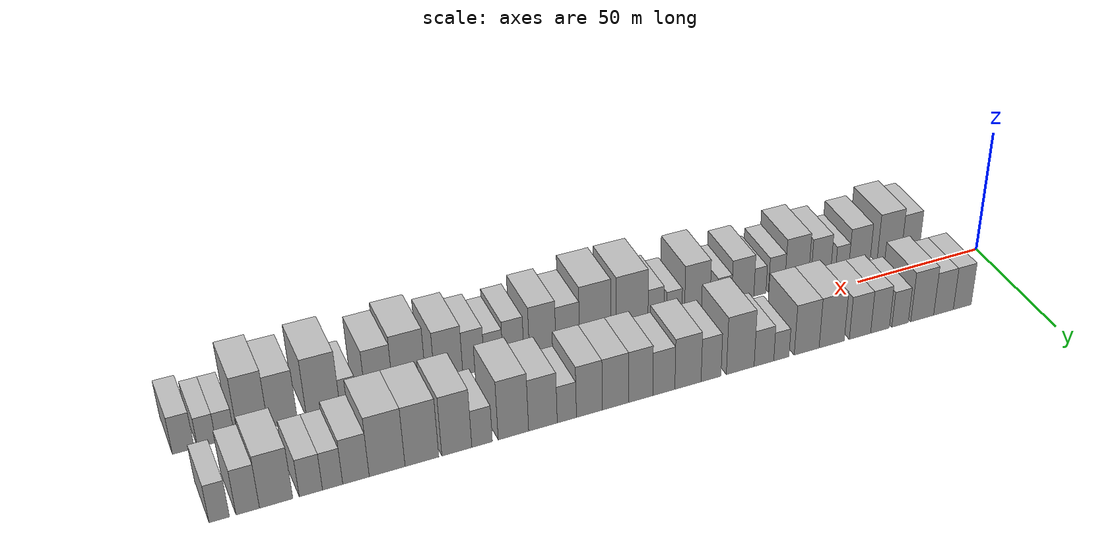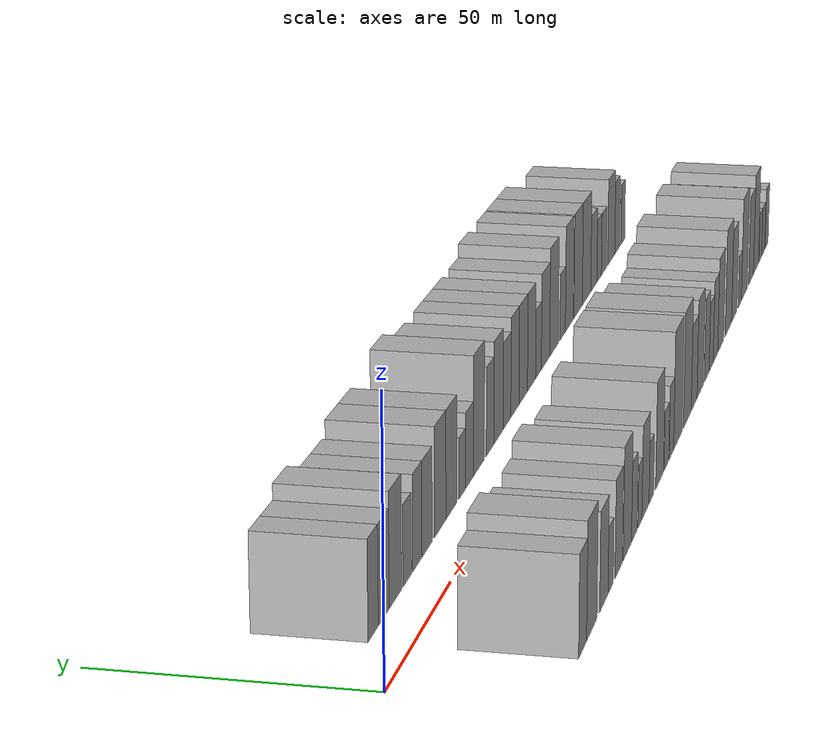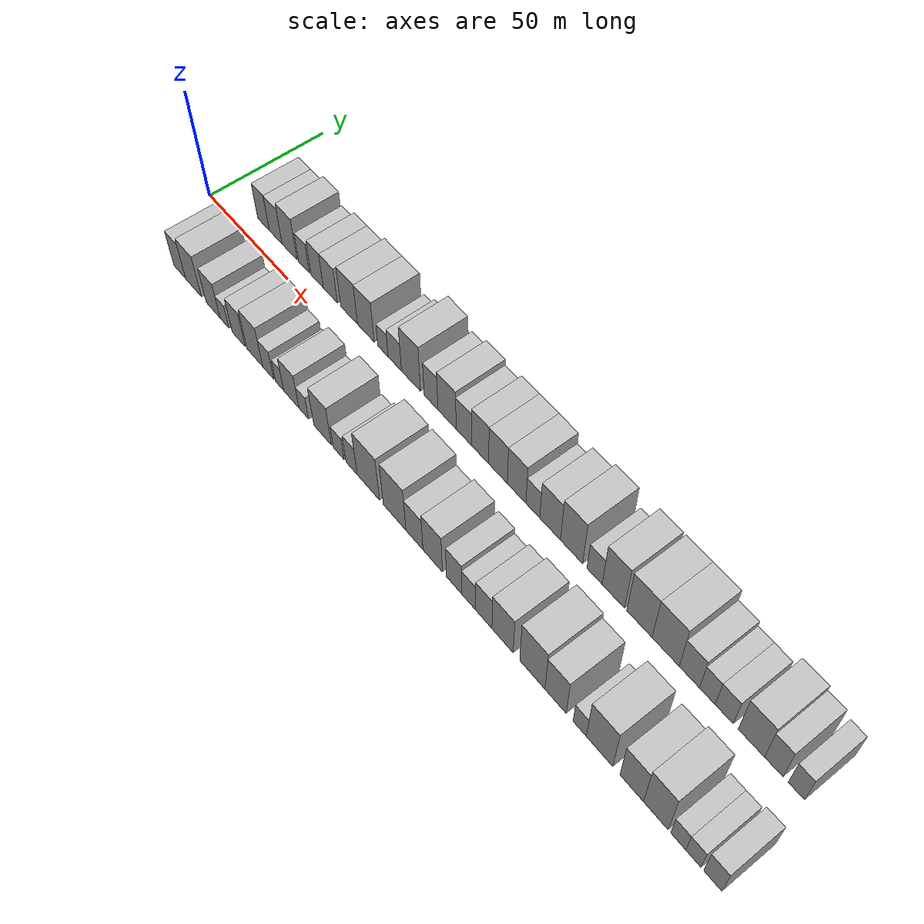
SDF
<sdf version="1.6">
 <world name="default">
  <scene>
   <sky><clouds><speed>12</speed></clouds></sky>
   <ambient>0.4 0.4 0.4 1</ambient>
   <background>0.7 0.7 0.7 1</background>
   <shadows>1</shadows>
  </scene>
  <gravity>0 0 -9.8066</gravity>
  <magnetic_field>6e-06 2.3e-05 -4.2e-05</magnetic_field>
  <physics default="0" name="default_physics" type="ode">
   <ode>
    <solver>
     <type>quick</type>
     <iters>10</iters>
     <sor>1.0</sor>
     <use_dynamic_moi_rescaling>0</use_dynamic_moi_rescaling>
    </solver>
    <constraints>
     <cfm>0</cfm>
     <erp>0.2</erp>
     <contact_max_correcting_vel>100</contact_max_correcting_vel>
     <contact_surface_layer>0.001</contact_surface_layer>
    </constraints>
   </ode>
   <max_step_size>0.004</max_step_size>
   <real_time_factor>1</real_time_factor>
   <real_time_update_rate>250</real_time_update_rate>
  </physics>
  <light name="sun" type="directional">
   <pose>0 0 10 0 0 0</pose>
   <diffuse>0.8 0.8 0.8 1</diffuse>
   <specular>0.2 0.2 0.2 1</specular>
   <attenuation>
    <range>1000</range>
    <constant>0.9</constant>
    <linear>0.01</linear>
    <quadratic>0.001</quadratic>
   </attenuation>
   <direction>-0.5 0.1 -0.9</direction>
  </light>
  <model name="building_1">
   <static>1</static>
   <pose>23.6788 17.5000 0 0.000000 0.000000 1.570796</pose>
   <link name="link">
    <pose>0 0 9.00 0 0 0</pose>
    <collision name="collision"><geometry><box><size>20.0000 7.3577 18.0000</size></box></geometry></collision>
    <visual name="visual">
     <cast_shadows>0</cast_shadows>
     <geometry><box><size>20.0000 7.3577 18.0000</size></box></geometry>
     <material>
      <script>
       <uri>model://HANNAS_wall/materials/scripts</uri>
       <uri>model://HANNAS_wall/materials/textures</uri>
       <name>vrc/HANNAS_wall</name>
      </script>
     </material>
    </visual>
   </link>
  </model>
  <model name="building_2">
   <static>1</static>
   <pose>31.3678 17.5000 0 0.000000 0.000000 1.570796</pose>
   <link name="link">
    <pose>0 0 9.00 0 0 0</pose>
    <collision name="collision"><geometry><box><size>20.0000 8.0202 18.0000</size></box></geometry></collision>
    <visual name="visual">
     <cast_shadows>0</cast_shadows>
     <geometry><box><size>20.0000 8.0202 18.0000</size></box></geometry>
     <material>
      <script>
       <uri>model://HANNAS_wall/materials/scripts</uri>
       <uri>model://HANNAS_wall/materials/textures</uri>
       <name>vrc/HANNAS_wall</name>
      </script>
     </material>
    </visual>
   </link>
  </model>
  <model name="building_3">
   <static>1</static>
   <pose>39.9978 17.5000 0 0.000000 0.000000 1.570796</pose>
   <link name="link">
    <pose>0 0 10.50 0 0 0</pose>
    <collision name="collision"><geometry><box><size>20.0000 9.2400 21.0000</size></box></geometry></collision>
    <visual name="visual">
     <cast_shadows>0</cast_shadows>
     <geometry><box><size>20.0000 9.2400 21.0000</size></box></geometry>
     <material>
      <script>
       <uri>model://HANNAS_wall/materials/scripts</uri>
       <uri>model://HANNAS_wall/materials/textures</uri>
       <name>vrc/HANNAS_wall</name>
      </script>
     </material>
    </visual>
   </link>
  </model>
  <model name="building_4">
   <static>1</static>
   <pose>48.9161 17.5000 0 0.000000 0.000000 1.570796</pose>
   <link name="link">
    <pose>0 0 7.50 0 0 0</pose>
    <collision name="collision"><geometry><box><size>20.0000 6.5967 15.0000</size></box></geometry></collision>
    <visual name="visual">
     <cast_shadows>0</cast_shadows>
     <geometry><box><size>20.0000 6.5967 15.0000</size></box></geometry>
     <material>
      <script>
       <uri>model://HANNAS_wall/materials/scripts</uri>
       <uri>model://HANNAS_wall/materials/textures</uri>
       <name>vrc/HANNAS_wall</name>
      </script>
     </material>
    </visual>
   </link>
  </model>
  <model name="building_5">
   <static>1</static>
   <pose>56.9347 17.5000 0 0.000000 0.000000 1.570796</pose>
   <link name="link">
    <pose>0 0 9.00 0 0 0</pose>
    <collision name="collision"><geometry><box><size>20.0000 7.4404 18.0000</size></box></geometry></collision>
    <visual name="visual">
     <cast_shadows>0</cast_shadows>
     <geometry><box><size>20.0000 7.4404 18.0000</size></box></geometry>
     <material>
      <script>
       <uri>model://HANNAS_wall/materials/scripts</uri>
       <uri>model://HANNAS_wall/materials/textures</uri>
       <name>vrc/HANNAS_wall</name>
      </script>
     </material>
    </visual>
   </link>
  </model>
  <model name="building_6">
   <static>1</static>
   <pose>64.8460 17.5000 0 0.000000 0.000000 1.570796</pose>
   <link name="link">
    <pose>0 0 9.00 0 0 0</pose>
    <collision name="collision"><geometry><box><size>20.0000 8.3821 18.0000</size></box></geometry></collision>
    <visual name="visual">
     <cast_shadows>0</cast_shadows>
     <geometry><box><size>20.0000 8.3821 18.0000</size></box></geometry>
     <material>
      <script>
       <uri>model://HANNAS_wall/materials/scripts</uri>
       <uri>model://HANNAS_wall/materials/textures</uri>
       <name>vrc/HANNAS_wall</name>
      </script>
     </material>
    </visual>
   </link>
  </model>
  <model name="building_7">
   <static>1</static>
   <pose>75.9265 17.5000 0 0.000000 0.000000 1.570796</pose>
   <link name="link">
    <pose>0 0 10.50 0 0 0</pose>
    <collision name="collision"><geometry><box><size>20.0000 9.7789 21.0000</size></box></geometry></collision>
    <visual name="visual">
     <cast_shadows>0</cast_shadows>
     <geometry><box><size>20.0000 9.7789 21.0000</size></box></geometry>
     <material>
      <script>
       <uri>model://HANNAS_wall/materials/scripts</uri>
       <uri>model://HANNAS_wall/materials/textures</uri>
       <name>vrc/HANNAS_wall</name>
      </script>
     </material>
    </visual>
   </link>
  </model>
  <model name="building_8">
   <static>1</static>
   <pose>85.6075 17.5000 0 0.000000 0.000000 1.570796</pose>
   <link name="link">
    <pose>0 0 10.50 0 0 0</pose>
    <collision name="collision"><geometry><box><size>20.0000 9.5833 21.0000</size></box></geometry></collision>
    <visual name="visual">
     <cast_shadows>0</cast_shadows>
     <geometry><box><size>20.0000 9.5833 21.0000</size></box></geometry>
     <material>
      <script>
       <uri>model://HANNAS_wall/materials/scripts</uri>
       <uri>model://HANNAS_wall/materials/textures</uri>
       <name>vrc/HANNAS_wall</name>
      </script>
     </material>
    </visual>
   </link>
  </model>
  <model name="building_9">
   <static>1</static>
   <pose>95.3073 17.5000 0 0.000000 0.000000 1.570796</pose>
   <link name="link">
    <pose>0 0 6.00 0 0 0</pose>
    <collision name="collision"><geometry><box><size>20.0000 5.8162 12.0000</size></box></geometry></collision>
    <visual name="visual">
     <cast_shadows>0</cast_shadows>
     <geometry><box><size>20.0000 5.8162 12.0000</size></box></geometry>
     <material>
      <script>
       <uri>model://HANNAS_wall/materials/scripts</uri>
       <uri>model://HANNAS_wall/materials/textures</uri>
       <name>vrc/HANNAS_wall</name>
      </script>
     </material>
    </visual>
   </link>
  </model>
  <model name="building_10">
   <static>1</static>
   <pose>101.9310 17.5000 0 0.000000 0.000000 1.570796</pose>
   <link name="link">
    <pose>0 0 7.50 0 0 0</pose>
    <collision name="collision"><geometry><box><size>20.0000 7.4312 15.0000</size></box></geometry></collision>
    <visual name="visual">
     <cast_shadows>0</cast_shadows>
     <geometry><box><size>20.0000 7.4312 15.0000</size></box></geometry>
     <material>
      <script>
       <uri>model://HANNAS_wall/materials/scripts</uri>
       <uri>model://HANNAS_wall/materials/textures</uri>
       <name>vrc/HANNAS_wall</name>
      </script>
     </material>
    </visual>
   </link>
  </model>
  <model name="building_11">
   <static>1</static>
   <pose>110.8485 17.5000 0 0.000000 0.000000 1.570796</pose>
   <link name="link">
    <pose>0 0 12.00 0 0 0</pose>
    <collision name="collision"><geometry><box><size>20.0000 10.4037 24.0000</size></box></geometry></collision>
    <visual name="visual">
     <cast_shadows>0</cast_shadows>
     <geometry><box><size>20.0000 10.4037 24.0000</size></box></geometry>
     <material>
      <script>
       <uri>model://HANNAS_wall/materials/scripts</uri>
       <uri>model://HANNAS_wall/materials/textures</uri>
       <name>vrc/HANNAS_wall</name>
      </script>
     </material>
    </visual>
   </link>
  </model>
  <model name="building_12">
   <static>1</static>
   <pose>121.7255 17.5000 0 0.000000 0.000000 1.570796</pose>
   <link name="link">
    <pose>0 0 9.00 0 0 0</pose>
    <collision name="collision"><geometry><box><size>20.0000 7.3503 18.0000</size></box></geometry></collision>
    <visual name="visual">
     <cast_shadows>0</cast_shadows>
     <geometry><box><size>20.0000 7.3503 18.0000</size></box></geometry>
     <material>
      <script>
       <uri>model://HANNAS_wall/materials/scripts</uri>
       <uri>model://HANNAS_wall/materials/textures</uri>
       <name>vrc/HANNAS_wall</name>
      </script>
     </material>
    </visual>
   </link>
  </model>
  <model name="building_13">
   <static>1</static>
   <pose>130.2155 17.5000 0 0.000000 0.000000 1.570796</pose>
   <link name="link">
    <pose>0 0 10.50 0 0 0</pose>
    <collision name="collision"><geometry><box><size>20.0000 9.6298 21.0000</size></box></geometry></collision>
    <visual name="visual">
     <cast_shadows>0</cast_shadows>
     <geometry><box><size>20.0000 9.6298 21.0000</size></box></geometry>
     <material>
      <script>
       <uri>model://HANNAS_wall/materials/scripts</uri>
       <uri>model://HANNAS_wall/materials/textures</uri>
       <name>vrc/HANNAS_wall</name>
      </script>
     </material>
    </visual>
   </link>
  </model>
  <model name="building_14">
   <static>1</static>
   <pose>139.0281 17.5000 0 0.000000 0.000000 1.570796</pose>
   <link name="link">
    <pose>0 0 9.00 0 0 0</pose>
    <collision name="collision"><geometry><box><size>20.0000 7.9952 18.0000</size></box></geometry></collision>
    <visual name="visual">
     <cast_shadows>0</cast_shadows>
     <geometry><box><size>20.0000 7.9952 18.0000</size></box></geometry>
     <material>
      <script>
       <uri>model://HANNAS_wall/materials/scripts</uri>
       <uri>model://HANNAS_wall/materials/textures</uri>
       <name>vrc/HANNAS_wall</name>
      </script>
     </material>
    </visual>
   </link>
  </model>
  <model name="building_15">
   <static>1</static>
   <pose>147.3601 17.5000 0 0.000000 0.000000 1.570796</pose>
   <link name="link">
    <pose>0 0 10.50 0 0 0</pose>
    <collision name="collision"><geometry><box><size>20.0000 8.6688 21.0000</size></box></geometry></collision>
    <visual name="visual">
     <cast_shadows>0</cast_shadows>
     <geometry><box><size>20.0000 8.6688 21.0000</size></box></geometry>
     <material>
      <script>
       <uri>model://HANNAS_wall/materials/scripts</uri>
       <uri>model://HANNAS_wall/materials/textures</uri>
       <name>vrc/HANNAS_wall</name>
      </script>
     </material>
    </visual>
   </link>
  </model>
  <model name="building_16">
   <static>1</static>
   <pose>156.3783 17.5000 0 0.000000 0.000000 1.570796</pose>
   <link name="link">
    <pose>0 0 10.50 0 0 0</pose>
    <collision name="collision"><geometry><box><size>20.0000 9.3675 21.0000</size></box></geometry></collision>
    <visual name="visual">
     <cast_shadows>0</cast_shadows>
     <geometry><box><size>20.0000 9.3675 21.0000</size></box></geometry>
     <material>
      <script>
       <uri>model://HANNAS_wall/materials/scripts</uri>
       <uri>model://HANNAS_wall/materials/textures</uri>
       <name>vrc/HANNAS_wall</name>
      </script>
     </material>
    </visual>
   </link>
  </model>
  <model name="building_17">
   <static>1</static>
   <pose>165.6403 17.5000 0 0.000000 0.000000 1.570796</pose>
   <link name="link">
    <pose>0 0 10.50 0 0 0</pose>
    <collision name="collision"><geometry><box><size>20.0000 9.1563 21.0000</size></box></geometry></collision>
    <visual name="visual">
     <cast_shadows>0</cast_shadows>
     <geometry><box><size>20.0000 9.1563 21.0000</size></box></geometry>
     <material>
      <script>
       <uri>model://HANNAS_wall/materials/scripts</uri>
       <uri>model://HANNAS_wall/materials/textures</uri>
       <name>vrc/HANNAS_wall</name>
      </script>
     </material>
    </visual>
   </link>
  </model>
  <model name="building_18">
   <static>1</static>
   <pose>173.5672 17.5000 0 0.000000 0.000000 1.570796</pose>
   <link name="link">
    <pose>0 0 7.50 0 0 0</pose>
    <collision name="collision"><geometry><box><size>20.0000 6.6975 15.0000</size></box></geometry></collision>
    <visual name="visual">
     <cast_shadows>0</cast_shadows>
     <geometry><box><size>20.0000 6.6975 15.0000</size></box></geometry>
     <material>
      <script>
       <uri>model://HANNAS_wall/materials/scripts</uri>
       <uri>model://HANNAS_wall/materials/textures</uri>
       <name>vrc/HANNAS_wall</name>
      </script>
     </material>
    </visual>
   </link>
  </model>
  <model name="building_19">
   <static>1</static>
   <pose>181.8697 17.5000 0 0.000000 0.000000 1.570796</pose>
   <link name="link">
    <pose>0 0 10.50 0 0 0</pose>
    <collision name="collision"><geometry><box><size>20.0000 9.9075 21.0000</size></box></geometry></collision>
    <visual name="visual">
     <cast_shadows>0</cast_shadows>
     <geometry><box><size>20.0000 9.9075 21.0000</size></box></geometry>
     <material>
      <script>
       <uri>model://HANNAS_wall/materials/scripts</uri>
       <uri>model://HANNAS_wall/materials/textures</uri>
       <name>vrc/HANNAS_wall</name>
      </script>
     </material>
    </visual>
   </link>
  </model>
  <model name="building_20">
   <static>1</static>
   <pose>192.0261 17.5000 0 0.000000 0.000000 1.570796</pose>
   <link name="link">
    <pose>0 0 12.00 0 0 0</pose>
    <collision name="collision"><geometry><box><size>20.0000 10.4054 24.0000</size></box></geometry></collision>
    <visual name="visual">
     <cast_shadows>0</cast_shadows>
     <geometry><box><size>20.0000 10.4054 24.0000</size></box></geometry>
     <material>
      <script>
       <uri>model://HANNAS_wall/materials/scripts</uri>
       <uri>model://HANNAS_wall/materials/textures</uri>
       <name>vrc/HANNAS_wall</name>
      </script>
     </material>
    </visual>
   </link>
  </model>
  <model name="building_21">
   <static>1</static>
   <pose>202.6918 17.5000 0 0.000000 0.000000 1.570796</pose>
   <link name="link">
    <pose>0 0 7.50 0 0 0</pose>
    <collision name="collision"><geometry><box><size>20.0000 6.9259 15.0000</size></box></geometry></collision>
    <visual name="visual">
     <cast_shadows>0</cast_shadows>
     <geometry><box><size>20.0000 6.9259 15.0000</size></box></geometry>
     <material>
      <script>
       <uri>model://HANNAS_wall/materials/scripts</uri>
       <uri>model://HANNAS_wall/materials/textures</uri>
       <name>vrc/HANNAS_wall</name>
      </script>
     </material>
    </visual>
   </link>
  </model>
  <model name="building_22">
   <static>1</static>
   <pose>211.1775 17.5000 0 0.000000 0.000000 1.570796</pose>
   <link name="link">
    <pose>0 0 12.00 0 0 0</pose>
    <collision name="collision"><geometry><box><size>20.0000 10.0453 24.0000</size></box></geometry></collision>
    <visual name="visual">
     <cast_shadows>0</cast_shadows>
     <geometry><box><size>20.0000 10.0453 24.0000</size></box></geometry>
     <material>
      <script>
       <uri>model://HANNAS_wall/materials/scripts</uri>
       <uri>model://HANNAS_wall/materials/textures</uri>
       <name>vrc/HANNAS_wall</name>
      </script>
     </material>
    </visual>
   </link>
  </model>
  <model name="building_23">
   <static>1</static>
   <pose>222.7701 17.5000 0 0.000000 0.000000 1.570796</pose>
   <link name="link">
    <pose>0 0 12.00 0 0 0</pose>
    <collision name="collision"><geometry><box><size>20.0000 11.1399 24.0000</size></box></geometry></collision>
    <visual name="visual">
     <cast_shadows>0</cast_shadows>
     <geometry><box><size>20.0000 11.1399 24.0000</size></box></geometry>
     <material>
      <script>
       <uri>model://HANNAS_wall/materials/scripts</uri>
       <uri>model://HANNAS_wall/materials/textures</uri>
       <name>vrc/HANNAS_wall</name>
      </script>
     </material>
    </visual>
   </link>
  </model>
  <model name="building_24">
   <static>1</static>
   <pose>234.1753 17.5000 0 0.000000 0.000000 1.570796</pose>
   <link name="link">
    <pose>0 0 12.00 0 0 0</pose>
    <collision name="collision"><geometry><box><size>20.0000 11.6705 24.0000</size></box></geometry></collision>
    <visual name="visual">
     <cast_shadows>0</cast_shadows>
     <geometry><box><size>20.0000 11.6705 24.0000</size></box></geometry>
     <material>
      <script>
       <uri>model://HANNAS_wall/materials/scripts</uri>
       <uri>model://HANNAS_wall/materials/textures</uri>
       <name>vrc/HANNAS_wall</name>
      </script>
     </material>
    </visual>
   </link>
  </model>
  <model name="building_25">
   <static>1</static>
   <pose>244.2708 17.5000 0 0.000000 0.000000 1.570796</pose>
   <link name="link">
    <pose>0 0 9.00 0 0 0</pose>
    <collision name="collision"><geometry><box><size>20.0000 8.5207 18.0000</size></box></geometry></collision>
    <visual name="visual">
     <cast_shadows>0</cast_shadows>
     <geometry><box><size>20.0000 8.5207 18.0000</size></box></geometry>
     <material>
      <script>
       <uri>model://HANNAS_wall/materials/scripts</uri>
       <uri>model://HANNAS_wall/materials/textures</uri>
       <name>vrc/HANNAS_wall</name>
      </script>
     </material>
    </visual>
   </link>
  </model>
  <model name="building_26">
   <static>1</static>
   <pose>251.7614 17.5000 0 0.000000 0.000000 1.570796</pose>
   <link name="link">
    <pose>0 0 7.50 0 0 0</pose>
    <collision name="collision"><geometry><box><size>20.0000 6.4604 15.0000</size></box></geometry></collision>
    <visual name="visual">
     <cast_shadows>0</cast_shadows>
     <geometry><box><size>20.0000 6.4604 15.0000</size></box></geometry>
     <material>
      <script>
       <uri>model://HANNAS_wall/materials/scripts</uri>
       <uri>model://HANNAS_wall/materials/textures</uri>
       <name>vrc/HANNAS_wall</name>
      </script>
     </material>
    </visual>
   </link>
  </model>
  <model name="building_27">
   <static>1</static>
   <pose>258.6778 17.5000 0 0.000000 0.000000 1.570796</pose>
   <link name="link">
    <pose>0 0 7.50 0 0 0</pose>
    <collision name="collision"><geometry><box><size>20.0000 7.3725 15.0000</size></box></geometry></collision>
    <visual name="visual">
     <cast_shadows>0</cast_shadows>
     <geometry><box><size>20.0000 7.3725 15.0000</size></box></geometry>
     <material>
      <script>
       <uri>model://HANNAS_wall/materials/scripts</uri>
       <uri>model://HANNAS_wall/materials/textures</uri>
       <name>vrc/HANNAS_wall</name>
      </script>
     </material>
    </visual>
   </link>
  </model>
  <model name="building_28">
   <static>1</static>
   <pose>269.5760 17.5000 0 0.000000 0.000000 1.570796</pose>
   <link name="link">
    <pose>0 0 10.50 0 0 0</pose>
    <collision name="collision"><geometry><box><size>20.0000 10.4240 21.0000</size></box></geometry></collision>
    <visual name="visual">
     <cast_shadows>0</cast_shadows>
     <geometry><box><size>20.0000 10.4240 21.0000</size></box></geometry>
     <material>
      <script>
       <uri>model://HANNAS_wall/materials/scripts</uri>
       <uri>model://HANNAS_wall/materials/textures</uri>
       <name>vrc/HANNAS_wall</name>
      </script>
     </material>
    </visual>
   </link>
  </model>
  <model name="building_29">
   <static>1</static>
   <pose>278.4209 17.5000 0 0.000000 0.000000 1.570796</pose>
   <link name="link">
    <pose>0 0 9.00 0 0 0</pose>
    <collision name="collision"><geometry><box><size>20.0000 7.2658 18.0000</size></box></geometry></collision>
    <visual name="visual">
     <cast_shadows>0</cast_shadows>
     <geometry><box><size>20.0000 7.2658 18.0000</size></box></geometry>
     <material>
      <script>
       <uri>model://HANNAS_wall/materials/scripts</uri>
       <uri>model://HANNAS_wall/materials/textures</uri>
       <name>vrc/HANNAS_wall</name>
      </script>
     </material>
    </visual>
   </link>
  </model>
  <model name="building_30">
   <static>1</static>
   <pose>287.1902 17.5000 0 0.000000 0.000000 1.570796</pose>
   <link name="link">
    <pose>0 0 7.50 0 0 0</pose>
    <collision name="collision"><geometry><box><size>20.0000 6.2728 15.0000</size></box></geometry></collision>
    <visual name="visual">
     <cast_shadows>0</cast_shadows>
     <geometry><box><size>20.0000 6.2728 15.0000</size></box></geometry>
     <material>
      <script>
       <uri>model://HANNAS_wall/materials/scripts</uri>
       <uri>model://HANNAS_wall/materials/textures</uri>
       <name>vrc/HANNAS_wall</name>
      </script>
     </material>
    </visual>
   </link>
  </model>
  <model name="building_31">
   <static>1</static>
   <pose>23.8289 -17.5000 0 0.000000 0.000000 1.570796</pose>
   <link name="link">
    <pose>0 0 9.00 0 0 0</pose>
    <collision name="collision"><geometry><box><size>20.0000 7.6578 18.0000</size></box></geometry></collision>
    <visual name="visual">
     <cast_shadows>0</cast_shadows>
     <geometry><box><size>20.0000 7.6578 18.0000</size></box></geometry>
     <material>
      <script>
       <uri>model://HANNAS_wall/materials/scripts</uri>
       <uri>model://HANNAS_wall/materials/textures</uri>
       <name>vrc/HANNAS_wall</name>
      </script>
     </material>
    </visual>
   </link>
  </model>
  <model name="building_32">
   <static>1</static>
   <pose>32.7414 -17.5000 0 0.000000 0.000000 1.570796</pose>
   <link name="link">
    <pose>0 0 10.50 0 0 0</pose>
    <collision name="collision"><geometry><box><size>20.0000 10.1671 21.0000</size></box></geometry></collision>
    <visual name="visual">
     <cast_shadows>0</cast_shadows>
     <geometry><box><size>20.0000 10.1671 21.0000</size></box></geometry>
     <material>
      <script>
       <uri>model://HANNAS_wall/materials/scripts</uri>
       <uri>model://HANNAS_wall/materials/textures</uri>
       <name>vrc/HANNAS_wall</name>
      </script>
     </material>
    </visual>
   </link>
  </model>
  <model name="building_33">
   <static>1</static>
   <pose>45.2137 -17.5000 0 0.000000 0.000000 1.570796</pose>
   <link name="link">
    <pose>0 0 9.00 0 0 0</pose>
    <collision name="collision"><geometry><box><size>20.0000 8.7775 18.0000</size></box></geometry></collision>
    <visual name="visual">
     <cast_shadows>0</cast_shadows>
     <geometry><box><size>20.0000 8.7775 18.0000</size></box></geometry>
     <material>
      <script>
       <uri>model://HANNAS_wall/materials/scripts</uri>
       <uri>model://HANNAS_wall/materials/textures</uri>
       <name>vrc/HANNAS_wall</name>
      </script>
     </material>
    </visual>
   </link>
  </model>
  <model name="building_34">
   <static>1</static>
   <pose>52.3261 -17.5000 0 0.000000 0.000000 1.570796</pose>
   <link name="link">
    <pose>0 0 6.00 0 0 0</pose>
    <collision name="collision"><geometry><box><size>20.0000 5.4472 12.0000</size></box></geometry></collision>
    <visual name="visual">
     <cast_shadows>0</cast_shadows>
     <geometry><box><size>20.0000 5.4472 12.0000</size></box></geometry>
     <material>
      <script>
       <uri>model://HANNAS_wall/materials/scripts</uri>
       <uri>model://HANNAS_wall/materials/textures</uri>
       <name>vrc/HANNAS_wall</name>
      </script>
     </material>
    </visual>
   </link>
  </model>
  <model name="building_35">
   <static>1</static>
   <pose>61.0647 -17.5000 0 0.000000 0.000000 1.570796</pose>
   <link name="link">
    <pose>0 0 9.00 0 0 0</pose>
    <collision name="collision"><geometry><box><size>20.0000 8.0300 18.0000</size></box></geometry></collision>
    <visual name="visual">
     <cast_shadows>0</cast_shadows>
     <geometry><box><size>20.0000 8.0300 18.0000</size></box></geometry>
     <material>
      <script>
       <uri>model://HANNAS_wall/materials/scripts</uri>
       <uri>model://HANNAS_wall/materials/textures</uri>
       <name>vrc/HANNAS_wall</name>
      </script>
     </material>
    </visual>
   </link>
  </model>
  <model name="building_36">
   <static>1</static>
   <pose>70.8630 -17.5000 0 0.000000 0.000000 1.570796</pose>
   <link name="link">
    <pose>0 0 10.50 0 0 0</pose>
    <collision name="collision"><geometry><box><size>20.0000 9.5667 21.0000</size></box></geometry></collision>
    <visual name="visual">
     <cast_shadows>0</cast_shadows>
     <geometry><box><size>20.0000 9.5667 21.0000</size></box></geometry>
     <material>
      <script>
       <uri>model://HANNAS_wall/materials/scripts</uri>
       <uri>model://HANNAS_wall/materials/textures</uri>
       <name>vrc/HANNAS_wall</name>
      </script>
     </material>
    </visual>
   </link>
  </model>
  <model name="building_37">
   <static>1</static>
   <pose>78.8868 -17.5000 0 0.000000 0.000000 1.570796</pose>
   <link name="link">
    <pose>0 0 7.50 0 0 0</pose>
    <collision name="collision"><geometry><box><size>20.0000 6.4808 15.0000</size></box></geometry></collision>
    <visual name="visual">
     <cast_shadows>0</cast_shadows>
     <geometry><box><size>20.0000 6.4808 15.0000</size></box></geometry>
     <material>
      <script>
       <uri>model://HANNAS_wall/materials/scripts</uri>
       <uri>model://HANNAS_wall/materials/textures</uri>
       <name>vrc/HANNAS_wall</name>
      </script>
     </material>
    </visual>
   </link>
  </model>
  <model name="building_38">
   <static>1</static>
   <pose>85.5345 -17.5000 0 0.000000 0.000000 1.570796</pose>
   <link name="link">
    <pose>0 0 6.00 0 0 0</pose>
    <collision name="collision"><geometry><box><size>20.0000 4.8148 12.0000</size></box></geometry></collision>
    <visual name="visual">
     <cast_shadows>0</cast_shadows>
     <geometry><box><size>20.0000 4.8148 12.0000</size></box></geometry>
     <material>
      <script>
       <uri>model://HANNAS_wall/materials/scripts</uri>
       <uri>model://HANNAS_wall/materials/textures</uri>
       <name>vrc/HANNAS_wall</name>
      </script>
     </material>
    </visual>
   </link>
  </model>
  <model name="building_39">
   <static>1</static>
   <pose>92.3503 -17.5000 0 0.000000 0.000000 1.570796</pose>
   <link name="link">
    <pose>0 0 9.00 0 0 0</pose>
    <collision name="collision"><geometry><box><size>20.0000 8.8167 18.0000</size></box></geometry></collision>
    <visual name="visual">
     <cast_shadows>0</cast_shadows>
     <geometry><box><size>20.0000 8.8167 18.0000</size></box></geometry>
     <material>
      <script>
       <uri>model://HANNAS_wall/materials/scripts</uri>
       <uri>model://HANNAS_wall/materials/textures</uri>
       <name>vrc/HANNAS_wall</name>
      </script>
     </material>
    </visual>
   </link>
  </model>
  <model name="building_40">
   <static>1</static>
   <pose>99.4966 -17.5000 0 0.000000 0.000000 1.570796</pose>
   <link name="link">
    <pose>0 0 6.00 0 0 0</pose>
    <collision name="collision"><geometry><box><size>20.0000 5.4760 12.0000</size></box></geometry></collision>
    <visual name="visual">
     <cast_shadows>0</cast_shadows>
     <geometry><box><size>20.0000 5.4760 12.0000</size></box></geometry>
     <material>
      <script>
       <uri>model://HANNAS_wall/materials/scripts</uri>
       <uri>model://HANNAS_wall/materials/textures</uri>
       <name>vrc/HANNAS_wall</name>
      </script>
     </material>
    </visual>
   </link>
  </model>
  <model name="building_41">
   <static>1</static>
   <pose>110.1549 -17.5000 0 0.000000 0.000000 1.570796</pose>
   <link name="link">
    <pose>0 0 10.50 0 0 0</pose>
    <collision name="collision"><geometry><box><size>20.0000 9.8406 21.0000</size></box></geometry></collision>
    <visual name="visual">
     <cast_shadows>0</cast_shadows>
     <geometry><box><size>20.0000 9.8406 21.0000</size></box></geometry>
     <material>
      <script>
       <uri>model://HANNAS_wall/materials/scripts</uri>
       <uri>model://HANNAS_wall/materials/textures</uri>
       <name>vrc/HANNAS_wall</name>
      </script>
     </material>
    </visual>
   </link>
  </model>
  <model name="building_42">
   <static>1</static>
   <pose>119.0127 -17.5000 0 0.000000 0.000000 1.570796</pose>
   <link name="link">
    <pose>0 0 6.00 0 0 0</pose>
    <collision name="collision"><geometry><box><size>20.0000 5.8748 12.0000</size></box></geometry></collision>
    <visual name="visual">
     <cast_shadows>0</cast_shadows>
     <geometry><box><size>20.0000 5.8748 12.0000</size></box></geometry>
     <material>
      <script>
       <uri>model://HANNAS_wall/materials/scripts</uri>
       <uri>model://HANNAS_wall/materials/textures</uri>
       <name>vrc/HANNAS_wall</name>
      </script>
     </material>
    </visual>
   </link>
  </model>
  <model name="building_43">
   <static>1</static>
   <pose>126.0045 -17.5000 0 0.000000 0.000000 1.570796</pose>
   <link name="link">
    <pose>0 0 7.50 0 0 0</pose>
    <collision name="collision"><geometry><box><size>20.0000 6.1087 15.0000</size></box></geometry></collision>
    <visual name="visual">
     <cast_shadows>0</cast_shadows>
     <geometry><box><size>20.0000 6.1087 15.0000</size></box></geometry>
     <material>
      <script>
       <uri>model://HANNAS_wall/materials/scripts</uri>
       <uri>model://HANNAS_wall/materials/textures</uri>
       <name>vrc/HANNAS_wall</name>
      </script>
     </material>
    </visual>
   </link>
  </model>
  <model name="building_44">
   <static>1</static>
   <pose>135.0304 -17.5000 0 0.000000 0.000000 1.570796</pose>
   <link name="link">
    <pose>0 0 12.00 0 0 0</pose>
    <collision name="collision"><geometry><box><size>20.0000 11.9431 24.0000</size></box></geometry></collision>
    <visual name="visual">
     <cast_shadows>0</cast_shadows>
     <geometry><box><size>20.0000 11.9431 24.0000</size></box></geometry>
     <material>
      <script>
       <uri>model://HANNAS_wall/materials/scripts</uri>
       <uri>model://HANNAS_wall/materials/textures</uri>
       <name>vrc/HANNAS_wall</name>
      </script>
     </material>
    </visual>
   </link>
  </model>
  <model name="building_45">
   <static>1</static>
   <pose>148.8252 -17.5000 0 0.000000 0.000000 1.570796</pose>
   <link name="link">
    <pose>0 0 12.00 0 0 0</pose>
    <collision name="collision"><geometry><box><size>20.0000 11.6465 24.0000</size></box></geometry></collision>
    <visual name="visual">
     <cast_shadows>0</cast_shadows>
     <geometry><box><size>20.0000 11.6465 24.0000</size></box></geometry>
     <material>
      <script>
       <uri>model://HANNAS_wall/materials/scripts</uri>
       <uri>model://HANNAS_wall/materials/textures</uri>
       <name>vrc/HANNAS_wall</name>
      </script>
     </material>
    </visual>
   </link>
  </model>
  <model name="building_46">
   <static>1</static>
   <pose>158.9990 -17.5000 0 0.000000 0.000000 1.570796</pose>
   <link name="link">
    <pose>0 0 9.00 0 0 0</pose>
    <collision name="collision"><geometry><box><size>20.0000 8.7010 18.0000</size></box></geometry></collision>
    <visual name="visual">
     <cast_shadows>0</cast_shadows>
     <geometry><box><size>20.0000 8.7010 18.0000</size></box></geometry>
     <material>
      <script>
       <uri>model://HANNAS_wall/materials/scripts</uri>
       <uri>model://HANNAS_wall/materials/textures</uri>
       <name>vrc/HANNAS_wall</name>
      </script>
     </material>
    </visual>
   </link>
  </model>
  <model name="building_47">
   <static>1</static>
   <pose>168.1669 -17.5000 0 0.000000 0.000000 1.570796</pose>
   <link name="link">
    <pose>0 0 10.50 0 0 0</pose>
    <collision name="collision"><geometry><box><size>20.0000 9.6349 21.0000</size></box></geometry></collision>
    <visual name="visual">
     <cast_shadows>0</cast_shadows>
     <geometry><box><size>20.0000 9.6349 21.0000</size></box></geometry>
     <material>
      <script>
       <uri>model://HANNAS_wall/materials/scripts</uri>
       <uri>model://HANNAS_wall/materials/textures</uri>
       <name>vrc/HANNAS_wall</name>
      </script>
     </material>
    </visual>
   </link>
  </model>
  <model name="building_48">
   <static>1</static>
   <pose>178.7441 -17.5000 0 0.000000 0.000000 1.570796</pose>
   <link name="link">
    <pose>0 0 9.00 0 0 0</pose>
    <collision name="collision"><geometry><box><size>20.0000 7.5194 18.0000</size></box></geometry></collision>
    <visual name="visual">
     <cast_shadows>0</cast_shadows>
     <geometry><box><size>20.0000 7.5194 18.0000</size></box></geometry>
     <material>
      <script>
       <uri>model://HANNAS_wall/materials/scripts</uri>
       <uri>model://HANNAS_wall/materials/textures</uri>
       <name>vrc/HANNAS_wall</name>
      </script>
     </material>
    </visual>
   </link>
  </model>
  <model name="building_49">
   <static>1</static>
   <pose>185.8427 -17.5000 0 0.000000 0.000000 1.570796</pose>
   <link name="link">
    <pose>0 0 7.50 0 0 0</pose>
    <collision name="collision"><geometry><box><size>20.0000 6.6780 15.0000</size></box></geometry></collision>
    <visual name="visual">
     <cast_shadows>0</cast_shadows>
     <geometry><box><size>20.0000 6.6780 15.0000</size></box></geometry>
     <material>
      <script>
       <uri>model://HANNAS_wall/materials/scripts</uri>
       <uri>model://HANNAS_wall/materials/textures</uri>
       <name>vrc/HANNAS_wall</name>
      </script>
     </material>
    </visual>
   </link>
  </model>
  <model name="building_50">
   <static>1</static>
   <pose>192.9999 -17.5000 0 0.000000 0.000000 1.570796</pose>
   <link name="link">
    <pose>0 0 9.00 0 0 0</pose>
    <collision name="collision"><geometry><box><size>20.0000 7.6363 18.0000</size></box></geometry></collision>
    <visual name="visual">
     <cast_shadows>0</cast_shadows>
     <geometry><box><size>20.0000 7.6363 18.0000</size></box></geometry>
     <material>
      <script>
       <uri>model://HANNAS_wall/materials/scripts</uri>
       <uri>model://HANNAS_wall/materials/textures</uri>
       <name>vrc/HANNAS_wall</name>
      </script>
     </material>
    </visual>
   </link>
  </model>
  <model name="building_51">
   <static>1</static>
   <pose>201.7672 -17.5000 0 0.000000 0.000000 1.570796</pose>
   <link name="link">
    <pose>0 0 10.50 0 0 0</pose>
    <collision name="collision"><geometry><box><size>20.0000 9.8984 21.0000</size></box></geometry></collision>
    <visual name="visual">
     <cast_shadows>0</cast_shadows>
     <geometry><box><size>20.0000 9.8984 21.0000</size></box></geometry>
     <material>
      <script>
       <uri>model://HANNAS_wall/materials/scripts</uri>
       <uri>model://HANNAS_wall/materials/textures</uri>
       <name>vrc/HANNAS_wall</name>
      </script>
     </material>
    </visual>
   </link>
  </model>
  <model name="building_52">
   <static>1</static>
   <pose>215.4058 -17.5000 0 0.000000 0.000000 1.570796</pose>
   <link name="link">
    <pose>0 0 12.00 0 0 0</pose>
    <collision name="collision"><geometry><box><size>20.0000 11.3788 24.0000</size></box></geometry></collision>
    <visual name="visual">
     <cast_shadows>0</cast_shadows>
     <geometry><box><size>20.0000 11.3788 24.0000</size></box></geometry>
     <material>
      <script>
       <uri>model://HANNAS_wall/materials/scripts</uri>
       <uri>model://HANNAS_wall/materials/textures</uri>
       <name>vrc/HANNAS_wall</name>
      </script>
     </material>
    </visual>
   </link>
  </model>
  <model name="building_53">
   <static>1</static>
   <pose>225.8042 -17.5000 0 0.000000 0.000000 1.570796</pose>
   <link name="link">
    <pose>0 0 10.50 0 0 0</pose>
    <collision name="collision"><geometry><box><size>20.0000 9.4179 21.0000</size></box></geometry></collision>
    <visual name="visual">
     <cast_shadows>0</cast_shadows>
     <geometry><box><size>20.0000 9.4179 21.0000</size></box></geometry>
     <material>
      <script>
       <uri>model://HANNAS_wall/materials/scripts</uri>
       <uri>model://HANNAS_wall/materials/textures</uri>
       <name>vrc/HANNAS_wall</name>
      </script>
     </material>
    </visual>
   </link>
  </model>
  <model name="building_54">
   <static>1</static>
   <pose>236.3628 -17.5000 0 0.000000 0.000000 1.570796</pose>
   <link name="link">
    <pose>0 0 6.00 0 0 0</pose>
    <collision name="collision"><geometry><box><size>20.0000 5.6993 12.0000</size></box></geometry></collision>
    <visual name="visual">
     <cast_shadows>0</cast_shadows>
     <geometry><box><size>20.0000 5.6993 12.0000</size></box></geometry>
     <material>
      <script>
       <uri>model://HANNAS_wall/materials/scripts</uri>
       <uri>model://HANNAS_wall/materials/textures</uri>
       <name>vrc/HANNAS_wall</name>
      </script>
     </material>
    </visual>
   </link>
  </model>
  <model name="building_55">
   <static>1</static>
   <pose>244.8325 -17.5000 0 0.000000 0.000000 1.570796</pose>
   <link name="link">
    <pose>0 0 12.00 0 0 0</pose>
    <collision name="collision"><geometry><box><size>20.0000 11.2401 24.0000</size></box></geometry></collision>
    <visual name="visual">
     <cast_shadows>0</cast_shadows>
     <geometry><box><size>20.0000 11.2401 24.0000</size></box></geometry>
     <material>
      <script>
       <uri>model://HANNAS_wall/materials/scripts</uri>
       <uri>model://HANNAS_wall/materials/textures</uri>
       <name>vrc/HANNAS_wall</name>
      </script>
     </material>
    </visual>
   </link>
  </model>
  <model name="building_56">
   <static>1</static>
   <pose>258.2687 -17.5000 0 0.000000 0.000000 1.570796</pose>
   <link name="link">
    <pose>0 0 10.50 0 0 0</pose>
    <collision name="collision"><geometry><box><size>20.0000 9.6323 21.0000</size></box></geometry></collision>
    <visual name="visual">
     <cast_shadows>0</cast_shadows>
     <geometry><box><size>20.0000 9.6323 21.0000</size></box></geometry>
     <material>
      <script>
       <uri>model://HANNAS_wall/materials/scripts</uri>
       <uri>model://HANNAS_wall/materials/textures</uri>
       <name>vrc/HANNAS_wall</name>
      </script>
     </material>
    </visual>
   </link>
  </model>
  <model name="building_57">
   <static>1</static>
   <pose>268.0836 -17.5000 0 0.000000 0.000000 1.570796</pose>
   <link name="link">
    <pose>0 0 12.00 0 0 0</pose>
    <collision name="collision"><geometry><box><size>20.0000 9.9975 24.0000</size></box></geometry></collision>
    <visual name="visual">
     <cast_shadows>0</cast_shadows>
     <geometry><box><size>20.0000 9.9975 24.0000</size></box></geometry>
     <material>
      <script>
       <uri>model://HANNAS_wall/materials/scripts</uri>
       <uri>model://HANNAS_wall/materials/textures</uri>
       <name>vrc/HANNAS_wall</name>
      </script>
     </material>
    </visual>
   </link>
  </model>
  <model name="building_58">
   <static>1</static>
   <pose>277.0751 -17.5000 0 0.000000 0.000000 1.570796</pose>
   <link name="link">
    <pose>0 0 6.00 0 0 0</pose>
    <collision name="collision"><geometry><box><size>20.0000 5.9855 12.0000</size></box></geometry></collision>
    <visual name="visual">
     <cast_shadows>0</cast_shadows>
     <geometry><box><size>20.0000 5.9855 12.0000</size></box></geometry>
     <material>
      <script>
       <uri>model://HANNAS_wall/materials/scripts</uri>
       <uri>model://HANNAS_wall/materials/textures</uri>
       <name>vrc/HANNAS_wall</name>
      </script>
     </material>
    </visual>
   </link>
  </model>
  <model name="building_59">
   <static>1</static>
   <pose>283.0418 -17.5000 0 0.000000 0.000000 1.570796</pose>
   <link name="link">
    <pose>0 0 6.00 0 0 0</pose>
    <collision name="collision"><geometry><box><size>20.0000 5.9479 12.0000</size></box></geometry></collision>
    <visual name="visual">
     <cast_shadows>0</cast_shadows>
     <geometry><box><size>20.0000 5.9479 12.0000</size></box></geometry>
     <material>
      <script>
       <uri>model://HANNAS_wall/materials/scripts</uri>
       <uri>model://HANNAS_wall/materials/textures</uri>
       <name>vrc/HANNAS_wall</name>
      </script>
     </material>
    </visual>
   </link>
  </model>
  <model name="building_60">
   <static>1</static>
   <pose>290.5140 -17.5000 0 0.000000 0.000000 1.570796</pose>
   <link name="link">
    <pose>0 0 7.50 0 0 0</pose>
    <collision name="collision"><geometry><box><size>20.0000 6.9966 15.0000</size></box></geometry></collision>
    <visual name="visual">
     <cast_shadows>0</cast_shadows>
     <geometry><box><size>20.0000 6.9966 15.0000</size></box></geometry>
     <material>
      <script>
       <uri>model://HANNAS_wall/materials/scripts</uri>
       <uri>model://HANNAS_wall/materials/textures</uri>
       <name>vrc/HANNAS_wall</name>
      </script>
     </material>
    </visual>
   </link>
  </model>
 </world>
</sdf>
